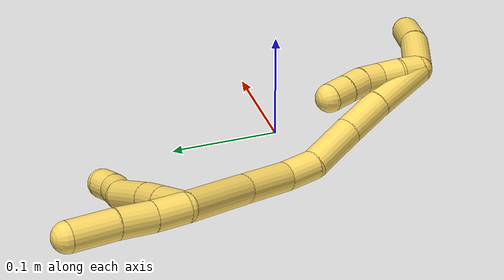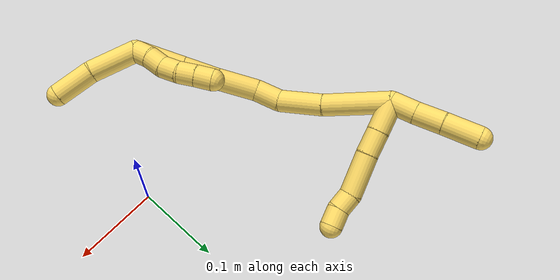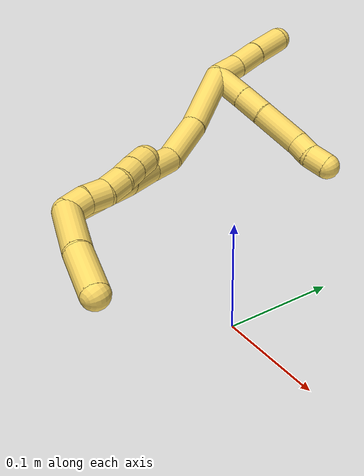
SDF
<sdf version="1.7">
 <world name="default">
  <model name="5">
   <static>0</static>
   <link name="5">
    <collision name="collision-cylinder-e_1_2_8">
     <pose>0.017642 0.000546 0.000787 -0.606922 1.51655 -0.576652</pose>
     <geometry><cylinder><radius>0.0125</radius><length>0.035336</length></cylinder></geometry>
     <surface>
      <friction><ode><mu>1.16</mu><mu2>1.16</mu2><slip1>0</slip1><slip2>0</slip2></ode></friction>
      <contact><ode><kp>1e+06</kp><kd>1</kd><max_vel>0</max_vel><min_depth>0.001</min_depth></ode></contact>
     </surface>
    </collision>
    <visual name="visual-cylinder-e_1_2_8">
     <pose>0.017642 0.000546 0.000787 -0.606922 1.51655 -0.576652</pose>
     <geometry><cylinder><radius>0.0125</radius><length>0.035336</length></cylinder></geometry>
     <material><ambient>1 0.858824 0.4 1</ambient></material>
    </visual>
    <collision name="collision-cylinder-e_2_8_9">
     <pose>0.048902 0.001688 0.002009 -0.939621 1.5167 -0.896631</pose>
     <geometry><cylinder><radius>0.0125</radius><length>0.027275</length></cylinder></geometry>
     <surface>
      <friction><ode><mu>1.16</mu><mu2>1.16</mu2><slip1>0</slip1><slip2>0</slip2></ode></friction>
      <contact><ode><kp>1e+06</kp><kd>1</kd><max_vel>0</max_vel><min_depth>0.001</min_depth></ode></contact>
     </surface>
    </collision>
    <visual name="visual-cylinder-e_2_8_9">
     <pose>0.048902 0.001688 0.002009 -0.939621 1.5167 -0.896631</pose>
     <geometry><cylinder><radius>0.0125</radius><length>0.027275</length></cylinder></geometry>
     <material><ambient>1 0.858824 0.4 1</ambient></material>
    </visual>
    <collision name="collision-cylinder-e_3_9_10">
     <pose>0.085813 0.004554 0.004233 -0.903581 1.44733 -0.810116</pose>
     <geometry><cylinder><radius>0.0125</radius><length>0.046945</length></cylinder></geometry>
     <surface>
      <friction><ode><mu>1.16</mu><mu2>1.16</mu2><slip1>0</slip1><slip2>0</slip2></ode></friction>
      <contact><ode><kp>1e+06</kp><kd>1</kd><max_vel>0</max_vel><min_depth>0.001</min_depth></ode></contact>
     </surface>
    </collision>
    <visual name="visual-cylinder-e_3_9_10">
     <pose>0.085813 0.004554 0.004233 -0.903581 1.44733 -0.810116</pose>
     <geometry><cylinder><radius>0.0125</radius><length>0.046945</length></cylinder></geometry>
     <material><ambient>1 0.858824 0.4 1</ambient></material>
    </visual>
    <collision name="collision-cylinder-e_4_10_11">
     <pose>0.118931 0.006045 0.004102 2.75569 1.36301 2.66885</pose>
     <geometry><cylinder><radius>0.0125</radius><length>0.020081</length></cylinder></geometry>
     <surface>
      <friction><ode><mu>1.16</mu><mu2>1.16</mu2><slip1>0</slip1><slip2>0</slip2></ode></friction>
      <contact><ode><kp>1e+06</kp><kd>1</kd><max_vel>0</max_vel><min_depth>0.001</min_depth></ode></contact>
     </surface>
    </collision>
    <visual name="visual-cylinder-e_4_10_11">
     <pose>0.118931 0.006045 0.004102 2.75569 1.36301 2.66885</pose>
     <geometry><cylinder><radius>0.0125</radius><length>0.020081</length></cylinder></geometry>
     <material><ambient>1 0.858824 0.4 1</ambient></material>
    </visual>
    <collision name="collision-cylinder-e_5_11_6">
     <pose>0.13886 0.004475 0.003155 0.683068 1.44745 0.608716</pose>
     <geometry><cylinder><radius>0.0125</radius><length>0.020364</length></cylinder></geometry>
     <surface>
      <friction><ode><mu>1.16</mu><mu2>1.16</mu2><slip1>0</slip1><slip2>0</slip2></ode></friction>
      <contact><ode><kp>1e+06</kp><kd>1</kd><max_vel>0</max_vel><min_depth>0.001</min_depth></ode></contact>
     </surface>
    </collision>
    <visual name="visual-cylinder-e_5_11_6">
     <pose>0.13886 0.004475 0.003155 0.683068 1.44745 0.608716</pose>
     <geometry><cylinder><radius>0.0125</radius><length>0.020364</length></cylinder></geometry>
     <material><ambient>1 0.858824 0.4 1</ambient></material>
    </visual>
    <collision name="collision-cylinder-e_1_2_12">
     <pose>-0.000364 0.000599 0.014201 -0.042127 -0.025593 0.000539</pose>
     <geometry><cylinder><radius>0.0125</radius><length>0.028437</length></cylinder></geometry>
     <surface>
      <friction><ode><mu>1.16</mu><mu2>1.16</mu2><slip1>0</slip1><slip2>0</slip2></ode></friction>
      <contact><ode><kp>1e+06</kp><kd>1</kd><max_vel>0</max_vel><min_depth>0.001</min_depth></ode></contact>
     </surface>
    </collision>
    <visual name="visual-cylinder-e_1_2_12">
     <pose>-0.000364 0.000599 0.014201 -0.042127 -0.025593 0.000539</pose>
     <geometry><cylinder><radius>0.0125</radius><length>0.028437</length></cylinder></geometry>
     <material><ambient>1 0.858824 0.4 1</ambient></material>
    </visual>
    <collision name="collision-cylinder-e_2_12_13">
     <pose>-0.001757 0.000636 0.044092 0.035782 -0.065459 -0.001172</pose>
     <geometry><cylinder><radius>0.0125</radius><length>0.031467</length></cylinder></geometry>
     <surface>
      <friction><ode><mu>1.16</mu><mu2>1.16</mu2><slip1>0</slip1><slip2>0</slip2></ode></friction>
      <contact><ode><kp>1e+06</kp><kd>1</kd><max_vel>0</max_vel><min_depth>0.001</min_depth></ode></contact>
     </surface>
    </collision>
    <visual name="visual-cylinder-e_2_12_13">
     <pose>-0.001757 0.000636 0.044092 0.035782 -0.065459 -0.001172</pose>
     <geometry><cylinder><radius>0.0125</radius><length>0.031467</length></cylinder></geometry>
     <material><ambient>1 0.858824 0.4 1</ambient></material>
    </visual>
    <collision name="collision-cylinder-e_3_13_5">
     <pose>-0.003911 0.000586 0.079792 -0.025566 -0.056126 0.000718</pose>
     <geometry><cylinder><radius>0.0125</radius><length>0.040096</length></cylinder></geometry>
     <surface>
      <friction><ode><mu>1.16</mu><mu2>1.16</mu2><slip1>0</slip1><slip2>0</slip2></ode></friction>
      <contact><ode><kp>1e+06</kp><kd>1</kd><max_vel>0</max_vel><min_depth>0.001</min_depth></ode></contact>
     </surface>
    </collision>
    <visual name="visual-cylinder-e_3_13_5">
     <pose>-0.003911 0.000586 0.079792 -0.025566 -0.056126 0.000718</pose>
     <geometry><cylinder><radius>0.0125</radius><length>0.040096</length></cylinder></geometry>
     <material><ambient>1 0.858824 0.4 1</ambient></material>
    </visual>
    <collision name="collision-cylinder-e_1_2_14">
     <pose>0.016967 0.002386 -0.033889 -3.07131 0.463185 -2.8456</pose>
     <geometry><cylinder><radius>0.0125</radius><length>0.075948</length></cylinder></geometry>
     <surface>
      <friction><ode><mu>1.16</mu><mu2>1.16</mu2><slip1>0</slip1><slip2>0</slip2></ode></friction>
      <contact><ode><kp>1e+06</kp><kd>1</kd><max_vel>0</max_vel><min_depth>0.001</min_depth></ode></contact>
     </surface>
    </collision>
    <visual name="visual-cylinder-e_1_2_14">
     <pose>0.016967 0.002386 -0.033889 -3.07131 0.463185 -2.8456</pose>
     <geometry><cylinder><radius>0.0125</radius><length>0.075948</length></cylinder></geometry>
     <material><ambient>1 0.858824 0.4 1</ambient></material>
    </visual>
    <collision name="collision-cylinder-e_2_14_15">
     <pose>0.042303 0.005545 -0.091821 -3.10946 0.334824 -2.95198</pose>
     <geometry><cylinder><radius>0.0125</radius><length>0.05094</length></cylinder></geometry>
     <surface>
      <friction><ode><mu>1.16</mu><mu2>1.16</mu2><slip1>0</slip1><slip2>0</slip2></ode></friction>
      <contact><ode><kp>1e+06</kp><kd>1</kd><max_vel>0</max_vel><min_depth>0.001</min_depth></ode></contact>
     </surface>
    </collision>
    <visual name="visual-cylinder-e_2_14_15">
     <pose>0.042303 0.005545 -0.091821 -3.10946 0.334824 -2.95198</pose>
     <geometry><cylinder><radius>0.0125</radius><length>0.05094</length></cylinder></geometry>
     <material><ambient>1 0.858824 0.4 1</ambient></material>
    </visual>
    <collision name="collision-cylinder-e_3_15_16">
     <pose>0.051368 0.004023 -0.130532 2.98643 0.046798 0.584835</pose>
     <geometry><cylinder><radius>0.0125</radius><length>0.029725</length></cylinder></geometry>
     <surface>
      <friction><ode><mu>1.16</mu><mu2>1.16</mu2><slip1>0</slip1><slip2>0</slip2></ode></friction>
      <contact><ode><kp>1e+06</kp><kd>1</kd><max_vel>0</max_vel><min_depth>0.001</min_depth></ode></contact>
     </surface>
    </collision>
    <visual name="visual-cylinder-e_3_15_16">
     <pose>0.051368 0.004023 -0.130532 2.98643 0.046798 0.584835</pose>
     <geometry><cylinder><radius>0.0125</radius><length>0.029725</length></cylinder></geometry>
     <material><ambient>1 0.858824 0.4 1</ambient></material>
    </visual>
    <collision name="collision-cylinder-e_4_16_17">
     <pose>0.057323 -0.007907 -0.166274 2.71276 0.223209 0.950585</pose>
     <geometry><cylinder><radius>0.0125</radius><length>0.047525</length></cylinder></geometry>
     <surface>
      <friction><ode><mu>1.16</mu><mu2>1.16</mu2><slip1>0</slip1><slip2>0</slip2></ode></friction>
      <contact><ode><kp>1e+06</kp><kd>1</kd><max_vel>0</max_vel><min_depth>0.001</min_depth></ode></contact>
     </surface>
    </collision>
    <visual name="visual-cylinder-e_4_16_17">
     <pose>0.057323 -0.007907 -0.166274 2.71276 0.223209 0.950585</pose>
     <geometry><cylinder><radius>0.0125</radius><length>0.047525</length></cylinder></geometry>
     <material><ambient>1 0.858824 0.4 1</ambient></material>
    </visual>
    <collision name="collision-cylinder-e_5_17_18">
     <pose>0.066062 -0.025935 -0.205496 2.7084 0.172277 0.747921</pose>
     <geometry><cylinder><radius>0.0125</radius><length>0.040589</length></cylinder></geometry>
     <surface>
      <friction><ode><mu>1.16</mu><mu2>1.16</mu2><slip1>0</slip1><slip2>0</slip2></ode></friction>
      <contact><ode><kp>1e+06</kp><kd>1</kd><max_vel>0</max_vel><min_depth>0.001</min_depth></ode></contact>
     </surface>
    </collision>
    <visual name="visual-cylinder-e_5_17_18">
     <pose>0.066062 -0.025935 -0.205496 2.7084 0.172277 0.747921</pose>
     <geometry><cylinder><radius>0.0125</radius><length>0.040589</length></cylinder></geometry>
     <material><ambient>1 0.858824 0.4 1</ambient></material>
    </visual>
    <collision name="collision-cylinder-e_6_18_1">
     <pose>0.074143 -0.04479 -0.248806 2.74755 0.167304 0.795345</pose>
     <geometry><cylinder><radius>0.0125</radius><length>0.055274</length></cylinder></geometry>
     <surface>
      <friction><ode><mu>1.16</mu><mu2>1.16</mu2><slip1>0</slip1><slip2>0</slip2></ode></friction>
      <contact><ode><kp>1e+06</kp><kd>1</kd><max_vel>0</max_vel><min_depth>0.001</min_depth></ode></contact>
     </surface>
    </collision>
    <visual name="visual-cylinder-e_6_18_1">
     <pose>0.074143 -0.04479 -0.248806 2.74755 0.167304 0.795345</pose>
     <geometry><cylinder><radius>0.0125</radius><length>0.055274</length></cylinder></geometry>
     <material><ambient>1 0.858824 0.4 1</ambient></material>
    </visual>
    <collision name="collision-cylinder-e_1_1_19">
     <pose>0.078469 -0.055446 -0.263974 0.019348 -0.027646 -0.000267</pose>
     <geometry><cylinder><radius>0.0125</radius><length>0.02</length></cylinder></geometry>
     <surface>
      <friction><ode><mu>1.16</mu><mu2>1.16</mu2><slip1>0</slip1><slip2>0</slip2></ode></friction>
      <contact><ode><kp>1e+06</kp><kd>1</kd><max_vel>0</max_vel><min_depth>0.001</min_depth></ode></contact>
     </surface>
    </collision>
    <visual name="visual-cylinder-e_1_1_19">
     <pose>0.078469 -0.055446 -0.263974 0.019348 -0.027646 -0.000267</pose>
     <geometry><cylinder><radius>0.0125</radius><length>0.02</length></cylinder></geometry>
     <material><ambient>1 0.858824 0.4 1</ambient></material>
    </visual>
    <collision name="collision-cylinder-e_2_19_20">
     <pose>0.079658 -0.054984 -0.244109 -0.066283 0.147061 -0.004884</pose>
     <geometry><cylinder><radius>0.0125</radius><length>0.02</length></cylinder></geometry>
     <surface>
      <friction><ode><mu>1.16</mu><mu2>1.16</mu2><slip1>0</slip1><slip2>0</slip2></ode></friction>
      <contact><ode><kp>1e+06</kp><kd>1</kd><max_vel>0</max_vel><min_depth>0.001</min_depth></ode></contact>
     </surface>
    </collision>
    <visual name="visual-cylinder-e_2_19_20">
     <pose>0.079658 -0.054984 -0.244109 -0.066283 0.147061 -0.004884</pose>
     <geometry><cylinder><radius>0.0125</radius><length>0.02</length></cylinder></geometry>
     <material><ambient>1 0.858824 0.4 1</ambient></material>
    </visual>
    <collision name="collision-cylinder-e_3_20_21">
     <pose>0.079908 -0.054196 -0.224314 -0.013391 -0.121799 0.000817</pose>
     <geometry><cylinder><radius>0.0125</radius><length>0.02</length></cylinder></geometry>
     <surface>
      <friction><ode><mu>1.16</mu><mu2>1.16</mu2><slip1>0</slip1><slip2>0</slip2></ode></friction>
      <contact><ode><kp>1e+06</kp><kd>1</kd><max_vel>0</max_vel><min_depth>0.001</min_depth></ode></contact>
     </surface>
    </collision>
    <visual name="visual-cylinder-e_3_20_21">
     <pose>0.079908 -0.054196 -0.224314 -0.013391 -0.121799 0.000817</pose>
     <geometry><cylinder><radius>0.0125</radius><length>0.02</length></cylinder></geometry>
     <material><ambient>1 0.858824 0.4 1</ambient></material>
    </visual>
    <collision name="collision-cylinder-e_4_21_22">
     <pose>0.076019 -0.052483 -0.204884 -0.164717 -0.270711 0.022482</pose>
     <geometry><cylinder><radius>0.0125</radius><length>0.02</length></cylinder></geometry>
     <surface>
      <friction><ode><mu>1.16</mu><mu2>1.16</mu2><slip1>0</slip1><slip2>0</slip2></ode></friction>
      <contact><ode><kp>1e+06</kp><kd>1</kd><max_vel>0</max_vel><min_depth>0.001</min_depth></ode></contact>
     </surface>
    </collision>
    <visual name="visual-cylinder-e_4_21_22">
     <pose>0.076019 -0.052483 -0.204884 -0.164717 -0.270711 0.022482</pose>
     <geometry><cylinder><radius>0.0125</radius><length>0.02</length></cylinder></geometry>
     <material><ambient>1 0.858824 0.4 1</ambient></material>
    </visual>
    <collision name="collision-cylinder-e_5_22_4">
     <pose>0.071025 -0.049234 -0.185796 -0.172479 -0.234148 0.020335</pose>
     <geometry><cylinder><radius>0.0125</radius><length>0.02</length></cylinder></geometry>
     <surface>
      <friction><ode><mu>1.16</mu><mu2>1.16</mu2><slip1>0</slip1><slip2>0</slip2></ode></friction>
      <contact><ode><kp>1e+06</kp><kd>1</kd><max_vel>0</max_vel><min_depth>0.001</min_depth></ode></contact>
     </surface>
    </collision>
    <visual name="visual-cylinder-e_5_22_4">
     <pose>0.071025 -0.049234 -0.185796 -0.172479 -0.234148 0.020335</pose>
     <geometry><cylinder><radius>0.0125</radius><length>0.02</length></cylinder></geometry>
     <material><ambient>1 0.858824 0.4 1</ambient></material>
    </visual>
    <collision name="collision-cylinder-e_1_1_23">
     <pose>0.101192 -0.062705 -0.288187 2.65884 0.949951 2.24864</pose>
     <geometry><cylinder><radius>0.0125</radius><length>0.055193</length></cylinder></geometry>
     <surface>
      <friction><ode><mu>1.16</mu><mu2>1.16</mu2><slip1>0</slip1><slip2>0</slip2></ode></friction>
      <contact><ode><kp>1e+06</kp><kd>1</kd><max_vel>0</max_vel><min_depth>0.001</min_depth></ode></contact>
     </surface>
    </collision>
    <visual name="visual-cylinder-e_1_1_23">
     <pose>0.101192 -0.062705 -0.288187 2.65884 0.949951 2.24864</pose>
     <geometry><cylinder><radius>0.0125</radius><length>0.055193</length></cylinder></geometry>
     <material><ambient>1 0.858824 0.4 1</ambient></material>
    </visual>
    <collision name="collision-cylinder-e_2_23_3">
     <pose>0.143756 -0.073235 -0.311773 2.8241 1.11512 2.63896</pose>
     <geometry><cylinder><radius>0.0125</radius><length>0.044807</length></cylinder></geometry>
     <surface>
      <friction><ode><mu>1.16</mu><mu2>1.16</mu2><slip1>0</slip1><slip2>0</slip2></ode></friction>
      <contact><ode><kp>1e+06</kp><kd>1</kd><max_vel>0</max_vel><min_depth>0.001</min_depth></ode></contact>
     </surface>
    </collision>
    <visual name="visual-cylinder-e_2_23_3">
     <pose>0.143756 -0.073235 -0.311773 2.8241 1.11512 2.63896</pose>
     <geometry><cylinder><radius>0.0125</radius><length>0.044807</length></cylinder></geometry>
     <material><ambient>1 0.858824 0.4 1</ambient></material>
    </visual>
    <collision name="collision-sphere-3">
     <pose>0.163874 -0.076313 -0.321139 0 -0 0</pose>
     <geometry><sphere><radius>0.0125</radius></sphere></geometry>
     <surface>
      <friction><ode><mu>1.16</mu><mu2>1.16</mu2><slip1>0</slip1><slip2>0</slip2></ode></friction>
      <contact><ode><kp>1e+06</kp><kd>1</kd><max_vel>0</max_vel><min_depth>0.001</min_depth></ode></contact>
     </surface>
    </collision>
    <visual name="visual-sphere-3">
     <pose>0.163874 -0.076313 -0.321139 0 -0 0</pose>
     <geometry><sphere><radius>0.0125</radius></sphere></geometry>
     <material><ambient>1 0.858824 0.4 1</ambient></material>
    </visual>
    <collision name="collision-sphere-23">
     <pose>0.123639 -0.070157 -0.302406 0 -0 0</pose>
     <geometry><sphere><radius>0.0125</radius></sphere></geometry>
     <surface>
      <friction><ode><mu>1.16</mu><mu2>1.16</mu2><slip1>0</slip1><slip2>0</slip2></ode></friction>
      <contact><ode><kp>1e+06</kp><kd>1</kd><max_vel>0</max_vel><min_depth>0.001</min_depth></ode></contact>
     </surface>
    </collision>
    <visual name="visual-sphere-23">
     <pose>0.123639 -0.070157 -0.302406 0 -0 0</pose>
     <geometry><sphere><radius>0.0125</radius></sphere></geometry>
     <material><ambient>1 0.858824 0.4 1</ambient></material>
    </visual>
    <collision name="collision-sphere-4">
     <pose>0.068705 -0.047564 -0.176213 0 -0 0</pose>
     <geometry><sphere><radius>0.0125</radius></sphere></geometry>
     <surface>
      <friction><ode><mu>1.16</mu><mu2>1.16</mu2><slip1>0</slip1><slip2>0</slip2></ode></friction>
      <contact><ode><kp>1e+06</kp><kd>1</kd><max_vel>0</max_vel><min_depth>0.001</min_depth></ode></contact>
     </surface>
    </collision>
    <visual name="visual-sphere-4">
     <pose>0.068705 -0.047564 -0.176213 0 -0 0</pose>
     <geometry><sphere><radius>0.0125</radius></sphere></geometry>
     <material><ambient>1 0.858824 0.4 1</ambient></material>
    </visual>
    <collision name="collision-sphere-22">
     <pose>0.073345 -0.050903 -0.195378 0 -0 0</pose>
     <geometry><sphere><radius>0.0125</radius></sphere></geometry>
     <surface>
      <friction><ode><mu>1.16</mu><mu2>1.16</mu2><slip1>0</slip1><slip2>0</slip2></ode></friction>
      <contact><ode><kp>1e+06</kp><kd>1</kd><max_vel>0</max_vel><min_depth>0.001</min_depth></ode></contact>
     </surface>
    </collision>
    <visual name="visual-sphere-22">
     <pose>0.073345 -0.050903 -0.195378 0 -0 0</pose>
     <geometry><sphere><radius>0.0125</radius></sphere></geometry>
     <material><ambient>1 0.858824 0.4 1</ambient></material>
    </visual>
    <collision name="collision-sphere-21">
     <pose>0.078693 -0.054063 -0.214389 0 -0 0</pose>
     <geometry><sphere><radius>0.0125</radius></sphere></geometry>
     <surface>
      <friction><ode><mu>1.16</mu><mu2>1.16</mu2><slip1>0</slip1><slip2>0</slip2></ode></friction>
      <contact><ode><kp>1e+06</kp><kd>1</kd><max_vel>0</max_vel><min_depth>0.001</min_depth></ode></contact>
     </surface>
    </collision>
    <visual name="visual-sphere-21">
     <pose>0.078693 -0.054063 -0.214389 0 -0 0</pose>
     <geometry><sphere><radius>0.0125</radius></sphere></geometry>
     <material><ambient>1 0.858824 0.4 1</ambient></material>
    </visual>
    <collision name="collision-sphere-20">
     <pose>0.081123 -0.054329 -0.234239 0 -0 0</pose>
     <geometry><sphere><radius>0.0125</radius></sphere></geometry>
     <surface>
      <friction><ode><mu>1.16</mu><mu2>1.16</mu2><slip1>0</slip1><slip2>0</slip2></ode></friction>
      <contact><ode><kp>1e+06</kp><kd>1</kd><max_vel>0</max_vel><min_depth>0.001</min_depth></ode></contact>
     </surface>
    </collision>
    <visual name="visual-sphere-20">
     <pose>0.081123 -0.054329 -0.234239 0 -0 0</pose>
     <geometry><sphere><radius>0.0125</radius></sphere></geometry>
     <material><ambient>1 0.858824 0.4 1</ambient></material>
    </visual>
    <collision name="collision-sphere-6">
     <pose>0.148964 0.003684 0.004127 0 -0 0</pose>
     <geometry><sphere><radius>0.0125</radius></sphere></geometry>
     <surface>
      <friction><ode><mu>1.16</mu><mu2>1.16</mu2><slip1>0</slip1><slip2>0</slip2></ode></friction>
      <contact><ode><kp>1e+06</kp><kd>1</kd><max_vel>0</max_vel><min_depth>0.001</min_depth></ode></contact>
     </surface>
    </collision>
    <visual name="visual-sphere-6">
     <pose>0.148964 0.003684 0.004127 0 -0 0</pose>
     <geometry><sphere><radius>0.0125</radius></sphere></geometry>
     <material><ambient>1 0.858824 0.4 1</ambient></material>
    </visual>
    <collision name="collision-sphere-11">
     <pose>0.128755 0.005266 0.002184 0 -0 0</pose>
     <geometry><sphere><radius>0.0125</radius></sphere></geometry>
     <surface>
      <friction><ode><mu>1.16</mu><mu2>1.16</mu2><slip1>0</slip1><slip2>0</slip2></ode></friction>
      <contact><ode><kp>1e+06</kp><kd>1</kd><max_vel>0</max_vel><min_depth>0.001</min_depth></ode></contact>
     </surface>
    </collision>
    <visual name="visual-sphere-11">
     <pose>0.128755 0.005266 0.002184 0 -0 0</pose>
     <geometry><sphere><radius>0.0125</radius></sphere></geometry>
     <material><ambient>1 0.858824 0.4 1</ambient></material>
    </visual>
    <collision name="collision-sphere-10">
     <pose>0.109106 0.006825 0.006021 0 -0 0</pose>
     <geometry><sphere><radius>0.0125</radius></sphere></geometry>
     <surface>
      <friction><ode><mu>1.16</mu><mu2>1.16</mu2><slip1>0</slip1><slip2>0</slip2></ode></friction>
      <contact><ode><kp>1e+06</kp><kd>1</kd><max_vel>0</max_vel><min_depth>0.001</min_depth></ode></contact>
     </surface>
    </collision>
    <visual name="visual-sphere-10">
     <pose>0.109106 0.006825 0.006021 0 -0 0</pose>
     <geometry><sphere><radius>0.0125</radius></sphere></geometry>
     <material><ambient>1 0.858824 0.4 1</ambient></material>
    </visual>
    <collision name="collision-sphere-9">
     <pose>0.062519 0.002283 0.002444 0 -0 0</pose>
     <geometry><sphere><radius>0.0125</radius></sphere></geometry>
     <surface>
      <friction><ode><mu>1.16</mu><mu2>1.16</mu2><slip1>0</slip1><slip2>0</slip2></ode></friction>
      <contact><ode><kp>1e+06</kp><kd>1</kd><max_vel>0</max_vel><min_depth>0.001</min_depth></ode></contact>
     </surface>
    </collision>
    <visual name="visual-sphere-9">
     <pose>0.062519 0.002283 0.002444 0 -0 0</pose>
     <geometry><sphere><radius>0.0125</radius></sphere></geometry>
     <material><ambient>1 0.858824 0.4 1</ambient></material>
    </visual>
    <collision name="collision-sphere-2">
     <geometry><sphere><radius>0.0125</radius></sphere></geometry>
     <surface>
      <friction><ode><mu>1.16</mu><mu2>1.16</mu2><slip1>0</slip1><slip2>0</slip2></ode></friction>
      <contact><ode><kp>1e+06</kp><kd>1</kd><max_vel>0</max_vel><min_depth>0.001</min_depth></ode></contact>
     </surface>
    </collision>
    <visual name="visual-sphere-2">
     <geometry><sphere><radius>0.0125</radius></sphere></geometry>
     <material><ambient>1 0.858824 0.4 1</ambient></material>
    </visual>
    <collision name="collision-sphere-19">
     <pose>0.078193 -0.055639 -0.25398 0 -0 0</pose>
     <geometry><sphere><radius>0.0125</radius></sphere></geometry>
     <surface>
      <friction><ode><mu>1.16</mu><mu2>1.16</mu2><slip1>0</slip1><slip2>0</slip2></ode></friction>
      <contact><ode><kp>1e+06</kp><kd>1</kd><max_vel>0</max_vel><min_depth>0.001</min_depth></ode></contact>
     </surface>
    </collision>
    <visual name="visual-sphere-19">
     <pose>0.078193 -0.055639 -0.25398 0 -0 0</pose>
     <geometry><sphere><radius>0.0125</radius></sphere></geometry>
     <material><ambient>1 0.858824 0.4 1</ambient></material>
    </visual>
    <collision name="collision-sphere-8">
     <pose>0.035284 0.001093 0.001574 0 -0 0</pose>
     <geometry><sphere><radius>0.0125</radius></sphere></geometry>
     <surface>
      <friction><ode><mu>1.16</mu><mu2>1.16</mu2><slip1>0</slip1><slip2>0</slip2></ode></friction>
      <contact><ode><kp>1e+06</kp><kd>1</kd><max_vel>0</max_vel><min_depth>0.001</min_depth></ode></contact>
     </surface>
    </collision>
    <visual name="visual-sphere-8">
     <pose>0.035284 0.001093 0.001574 0 -0 0</pose>
     <geometry><sphere><radius>0.0125</radius></sphere></geometry>
     <material><ambient>1 0.858824 0.4 1</ambient></material>
    </visual>
    <collision name="collision-sphere-12">
     <pose>-0.000728 0.001197 0.028403 0 -0 0</pose>
     <geometry><sphere><radius>0.0125</radius></sphere></geometry>
     <surface>
      <friction><ode><mu>1.16</mu><mu2>1.16</mu2><slip1>0</slip1><slip2>0</slip2></ode></friction>
      <contact><ode><kp>1e+06</kp><kd>1</kd><max_vel>0</max_vel><min_depth>0.001</min_depth></ode></contact>
     </surface>
    </collision>
    <visual name="visual-sphere-12">
     <pose>-0.000728 0.001197 0.028403 0 -0 0</pose>
     <geometry><sphere><radius>0.0125</radius></sphere></geometry>
     <material><ambient>1 0.858824 0.4 1</ambient></material>
    </visual>
    <collision name="collision-sphere-13">
     <pose>-0.002786 7.4e-05 0.059782 0 -0 0</pose>
     <geometry><sphere><radius>0.0125</radius></sphere></geometry>
     <surface>
      <friction><ode><mu>1.16</mu><mu2>1.16</mu2><slip1>0</slip1><slip2>0</slip2></ode></friction>
      <contact><ode><kp>1e+06</kp><kd>1</kd><max_vel>0</max_vel><min_depth>0.001</min_depth></ode></contact>
     </surface>
    </collision>
    <visual name="visual-sphere-13">
     <pose>-0.002786 7.4e-05 0.059782 0 -0 0</pose>
     <geometry><sphere><radius>0.0125</radius></sphere></geometry>
     <material><ambient>1 0.858824 0.4 1</ambient></material>
    </visual>
    <collision name="collision-sphere-5">
     <pose>-0.005035 0.001097 0.099802 0 -0 0</pose>
     <geometry><sphere><radius>0.0125</radius></sphere></geometry>
     <surface>
      <friction><ode><mu>1.16</mu><mu2>1.16</mu2><slip1>0</slip1><slip2>0</slip2></ode></friction>
      <contact><ode><kp>1e+06</kp><kd>1</kd><max_vel>0</max_vel><min_depth>0.001</min_depth></ode></contact>
     </surface>
    </collision>
    <visual name="visual-sphere-5">
     <pose>-0.005035 0.001097 0.099802 0 -0 0</pose>
     <geometry><sphere><radius>0.0125</radius></sphere></geometry>
     <material><ambient>1 0.858824 0.4 1</ambient></material>
    </visual>
    <collision name="collision-sphere-14">
     <pose>0.033934 0.004772 -0.067778 0 -0 0</pose>
     <geometry><sphere><radius>0.0125</radius></sphere></geometry>
     <surface>
      <friction><ode><mu>1.16</mu><mu2>1.16</mu2><slip1>0</slip1><slip2>0</slip2></ode></friction>
      <contact><ode><kp>1e+06</kp><kd>1</kd><max_vel>0</max_vel><min_depth>0.001</min_depth></ode></contact>
     </surface>
    </collision>
    <visual name="visual-sphere-14">
     <pose>0.033934 0.004772 -0.067778 0 -0 0</pose>
     <geometry><sphere><radius>0.0125</radius></sphere></geometry>
     <material><ambient>1 0.858824 0.4 1</ambient></material>
    </visual>
    <collision name="collision-sphere-15">
     <pose>0.050672 0.006318 -0.115864 0 -0 0</pose>
     <geometry><sphere><radius>0.0125</radius></sphere></geometry>
     <surface>
      <friction><ode><mu>1.16</mu><mu2>1.16</mu2><slip1>0</slip1><slip2>0</slip2></ode></friction>
      <contact><ode><kp>1e+06</kp><kd>1</kd><max_vel>0</max_vel><min_depth>0.001</min_depth></ode></contact>
     </surface>
    </collision>
    <visual name="visual-sphere-15">
     <pose>0.050672 0.006318 -0.115864 0 -0 0</pose>
     <geometry><sphere><radius>0.0125</radius></sphere></geometry>
     <material><ambient>1 0.858824 0.4 1</ambient></material>
    </visual>
    <collision name="collision-sphere-16">
     <pose>0.052063 0.001729 -0.1452 0 -0 0</pose>
     <geometry><sphere><radius>0.0125</radius></sphere></geometry>
     <surface>
      <friction><ode><mu>1.16</mu><mu2>1.16</mu2><slip1>0</slip1><slip2>0</slip2></ode></friction>
      <contact><ode><kp>1e+06</kp><kd>1</kd><max_vel>0</max_vel><min_depth>0.001</min_depth></ode></contact>
     </surface>
    </collision>
    <visual name="visual-sphere-16">
     <pose>0.052063 0.001729 -0.1452 0 -0 0</pose>
     <geometry><sphere><radius>0.0125</radius></sphere></geometry>
     <material><ambient>1 0.858824 0.4 1</ambient></material>
    </visual>
    <collision name="collision-sphere-17">
     <pose>0.062583 -0.017542 -0.187349 0 -0 0</pose>
     <geometry><sphere><radius>0.0125</radius></sphere></geometry>
     <surface>
      <friction><ode><mu>1.16</mu><mu2>1.16</mu2><slip1>0</slip1><slip2>0</slip2></ode></friction>
      <contact><ode><kp>1e+06</kp><kd>1</kd><max_vel>0</max_vel><min_depth>0.001</min_depth></ode></contact>
     </surface>
    </collision>
    <visual name="visual-sphere-17">
     <pose>0.062583 -0.017542 -0.187349 0 -0 0</pose>
     <geometry><sphere><radius>0.0125</radius></sphere></geometry>
     <material><ambient>1 0.858824 0.4 1</ambient></material>
    </visual>
    <collision name="collision-sphere-18">
     <pose>0.069541 -0.034328 -0.223643 0 -0 0</pose>
     <geometry><sphere><radius>0.0125</radius></sphere></geometry>
     <surface>
      <friction><ode><mu>1.16</mu><mu2>1.16</mu2><slip1>0</slip1><slip2>0</slip2></ode></friction>
      <contact><ode><kp>1e+06</kp><kd>1</kd><max_vel>0</max_vel><min_depth>0.001</min_depth></ode></contact>
     </surface>
    </collision>
    <visual name="visual-sphere-18">
     <pose>0.069541 -0.034328 -0.223643 0 -0 0</pose>
     <geometry><sphere><radius>0.0125</radius></sphere></geometry>
     <material><ambient>1 0.858824 0.4 1</ambient></material>
    </visual>
    <collision name="collision-sphere-1">
     <pose>0.078746 -0.055253 -0.273968 0 -0 0</pose>
     <geometry><sphere><radius>0.0125</radius></sphere></geometry>
     <surface>
      <friction><ode><mu>1.16</mu><mu2>1.16</mu2><slip1>0</slip1><slip2>0</slip2></ode></friction>
      <contact><ode><kp>1e+06</kp><kd>1</kd><max_vel>0</max_vel><min_depth>0.001</min_depth></ode></contact>
     </surface>
    </collision>
    <visual name="visual-sphere-1">
     <pose>0.078746 -0.055253 -0.273968 0 -0 0</pose>
     <geometry><sphere><radius>0.0125</radius></sphere></geometry>
     <material><ambient>1 0.858824 0.4 1</ambient></material>
    </visual>
    <inertial>
     <pose>0.060242 -0.019784 -0.117393 0 -0 0</pose>
     <mass>0.75</mass>
     <inertia>
      <ixx>3.8e-05</ixx>
      <ixy>0</ixy>
      <ixz>0</ixz>
      <iyy>0.000111</iyy>
      <iyz>0</iyz>
      <izz>-6.4e-05</izz>
     </inertia>
    </inertial>
   </link>
   <pose>-0.235197 0.153493 0.104578 -1.46476 0.361264 0.223898</pose>
  </model>
 </world>
</sdf>
